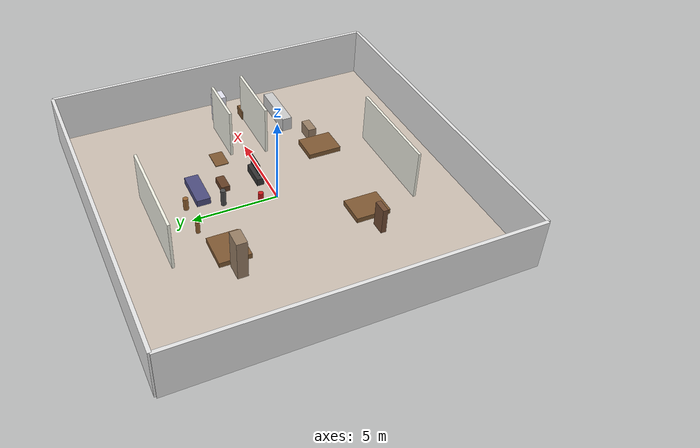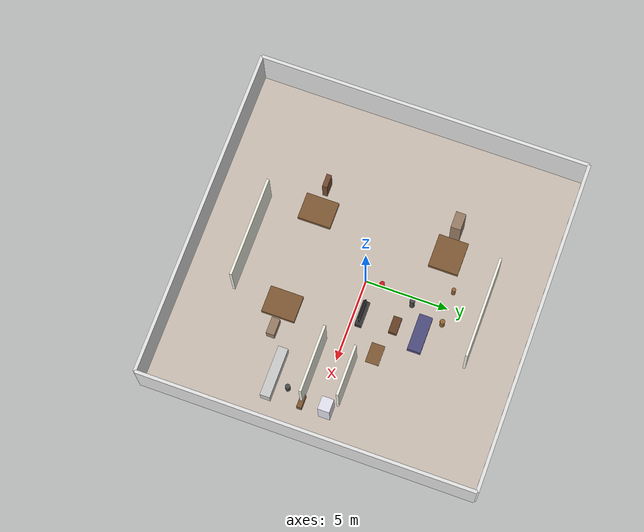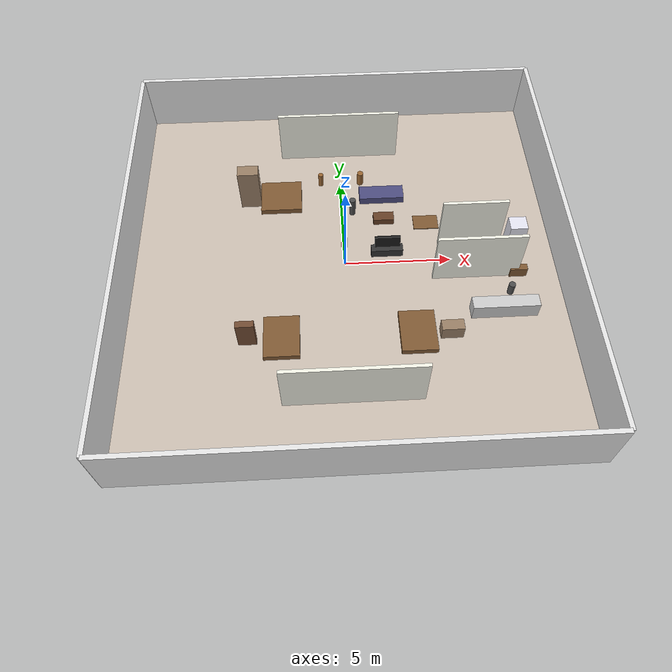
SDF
<?xml version="1.0" ?>
<sdf version="1.6">
  <world name="three_bedroom_apartment">
    <!-- Physics settings -->
    <physics type="ode">
      <max_step_size>0.001</max_step_size>
      <real_time_factor>1.0</real_time_factor>
      <real_time_update_rate>1000</real_time_update_rate>
    </physics>

    <!-- Scene -->
    <scene>
      <ambient>0.5 0.5 0.5 1</ambient>
      <background>0.8 0.9 1.0 1</background>
      <shadows>true</shadows>
    </scene>

    <!-- Lighting -->
    <light type="directional" name="sun">
      <cast_shadows>true</cast_shadows>
      <pose>0 0 10 0 0 0</pose>
      <diffuse>0.8 0.8 0.8 1</diffuse>
      <specular>0.2 0.2 0.2 1</specular>
      <direction>-0.5 1 -0.5</direction>
    </light>

    <light type="point" name="living_room_light">
      <pose>3 3 2.8 0 0 0</pose>
      <diffuse>1 1 0.9 1</diffuse>
      <attenuation>
        <range>10</range>
        <constant>0.5</constant>
        <linear>0.1</linear>
      </attenuation>
    </light>

    <light type="point" name="bedroom_light">
      <pose>-3 0 2.8 0 0 0</pose>
      <diffuse>1 1 0.9 1</diffuse>
      <attenuation>
        <range>10</range>
        <constant>0.5</constant>
        <linear>0.1</linear>
      </attenuation>
    </light>

    <!-- Ground/Floor -->
    <model name="floor">
      <static>true</static>
      <link name="floor_link">
        <pose>0 0 0 0 0 0</pose>
        <collision name="floor_collision">
          <geometry>
            <box>
              <size>20 20 0.1</size>
            </box>
          </geometry>
        </collision>
        <visual name="floor_visual">
          <geometry>
            <box>
              <size>20 20 0.1</size>
            </box>
          </geometry>
          <material>
            <ambient>0.8 0.75 0.7 1</ambient>
            <diffuse>0.8 0.75 0.7 1</diffuse>
          </material>
        </visual>
      </link>
    </model>

    <!-- ==================== WALLS ==================== -->
    <!-- North wall -->
    <model name="wall_north">
      <static>true</static>
      <link name="wall_link">
        <pose>0 10 1.5 0 0 0</pose>
        <collision name="wall_collision">
          <geometry>
            <box>
              <size>20 0.2 3</size>
            </box>
          </geometry>
        </collision>
        <visual name="wall_visual">
          <geometry>
            <box>
              <size>20 0.2 3</size>
            </box>
          </geometry>
          <material>
            <ambient>0.9 0.9 0.9 1</ambient>
            <diffuse>0.9 0.9 0.9 1</diffuse>
          </material>
        </visual>
      </link>
    </model>

    <!-- South wall -->
    <model name="wall_south">
      <static>true</static>
      <link name="wall_link">
        <pose>0 -10 1.5 0 0 0</pose>
        <collision name="wall_collision">
          <geometry>
            <box>
              <size>20 0.2 3</size>
            </box>
          </geometry>
        </collision>
        <visual name="wall_visual">
          <geometry>
            <box>
              <size>20 0.2 3</size>
            </box>
          </geometry>
          <material>
            <ambient>0.9 0.9 0.9 1</ambient>
            <diffuse>0.9 0.9 0.9 1</diffuse>
          </material>
        </visual>
      </link>
    </model>

    <!-- West wall -->
    <model name="wall_west">
      <static>true</static>
      <link name="wall_link">
        <pose>-10 0 1.5 0 0 0</pose>
        <collision name="wall_collision">
          <geometry>
            <box>
              <size>0.2 20 3</size>
            </box>
          </geometry>
        </collision>
        <visual name="wall_visual">
          <geometry>
            <box>
              <size>0.2 20 3</size>
            </box>
          </geometry>
          <material>
            <ambient>0.9 0.9 0.9 1</ambient>
            <diffuse>0.9 0.9 0.9 1</diffuse>
          </material>
        </visual>
      </link>
    </model>

    <!-- East wall -->
    <model name="wall_east">
      <static>true</static>
      <link name="wall_link">
        <pose>10 0 1.5 0 0 0</pose>
        <collision name="wall_collision">
          <geometry>
            <box>
              <size>0.2 20 3</size>
            </box>
          </geometry>
        </collision>
        <visual name="wall_visual">
          <geometry>
            <box>
              <size>0.2 20 3</size>
            </box>
          </geometry>
          <material>
            <ambient>0.9 0.9 0.9 1</ambient>
            <diffuse>0.9 0.9 0.9 1</diffuse>
          </material>
        </visual>
      </link>
    </model>

    <!-- Interior wall - vertical -->
    <model name="wall_vertical">
      <static>true</static>
      <link name="wall_link">
        <pose>0 -7 1.5 0 0 0</pose>
        <collision name="wall_collision">
          <geometry>
            <box>
              <size>6 0.15 3</size>
            </box>
          </geometry>
        </collision>
        <visual name="wall_visual">
          <geometry>
            <box>
              <size>6 0.15 3</size>
            </box>
          </geometry>
          <material>
            <ambient>0.95 0.95 0.9 1</ambient>
            <diffuse>0.95 0.95 0.9 1</diffuse>
          </material>
        </visual>
      </link>
    </model>

    <!-- Interior wall - vertical 2 -->
    <model name="wall_vertical2">
      <static>true</static>
      <link name="wall_link">
        <pose>0 7 1.5 0 0 0</pose>
        <collision name="wall_collision">
          <geometry>
            <box>
              <size>6 0.15 3</size>
            </box>
          </geometry>
        </collision>
        <visual name="wall_visual">
          <geometry>
            <box>
              <size>6 0.15 3</size>
            </box>
          </geometry>
          <material>
            <ambient>0.95 0.95 0.9 1</ambient>
            <diffuse>0.95 0.95 0.9 1</diffuse>
          </material>
        </visual>
      </link>
    </model>

    <!-- Kitchen wall -->
    <model name="kitchen_wall">
      <static>true</static>
      <link name="wall_link">
        <pose>6 -1 1.5 0 0 0</pose>
        <collision name="wall_collision">
          <geometry>
            <box>
              <size>4 0.15 3</size>
            </box>
          </geometry>
        </collision>
        <visual name="wall_visual">
          <geometry>
            <box>
              <size>4 0.15 3</size>
            </box>
          </geometry>
          <material>
            <ambient>0.95 0.95 0.9 1</ambient>
            <diffuse>0.95 0.95 0.9 1</diffuse>
          </material>
        </visual>
      </link>
    </model>

    <!-- Bathroom wall -->
    <model name="bathroom_wall">
      <static>true</static>
      <link name="wall_link">
        <pose>6 1 1.5 0 0 0</pose>
        <collision name="wall_collision">
          <geometry>
            <box>
              <size>3 0.15 3</size>
            </box>
          </geometry>
        </collision>
        <visual name="wall_visual">
          <geometry>
            <box>
              <size>3 0.15 3</size>
            </box>
          </geometry>
          <material>
            <ambient>0.95 0.95 0.9 1</ambient>
            <diffuse>0.95 0.95 0.9 1</diffuse>
          </material>
        </visual>
      </link>
    </model>

    <!-- ==================== FURNITURE ==================== -->
    <!-- Sofa -->
    <model name="sofa">
      <static>true</static>
      <pose>2 4 0.25 0 0 0</pose>
      <link name="base">
        <collision name="sofa_collision">
          <geometry>
            <box>
              <size>2.2 0.8 0.4</size>
            </box>
          </geometry>
        </collision>
        <visual name="sofa_visual">
          <geometry>
            <box>
              <size>2.2 0.8 0.4</size>
            </box>
          </geometry>
          <material>
            <ambient>0.3 0.3 0.5 1</ambient>
            <diffuse>0.3 0.3 0.5 1</diffuse>
          </material>
        </visual>
      </link>
    </model>

    <!-- Coffee Table -->
    <model name="coffee_table">
      <static>true</static>
      <pose>2 2.5 0.2 0 0 0</pose>
      <link name="link">
        <collision name="table_collision">
          <geometry>
            <box>
              <size>1.0 0.5 0.4</size>
            </box>
          </geometry>
        </collision>
        <visual name="table_visual">
          <geometry>
            <box>
              <size>1.0 0.5 0.4</size>
            </box>
          </geometry>
          <material>
            <ambient>0.4 0.25 0.15 1</ambient>
            <diffuse>0.4 0.25 0.15 1</diffuse>
          </material>
        </visual>
      </link>
    </model>

    <!-- TV Stand -->
    <model name="tv_stand">
      <static>true</static>
      <pose>2 0.5 0.25 0 0 0</pose>
      <link name="link">
        <collision name="stand_collision">
          <geometry>
            <box>
              <size>1.5 0.4 0.5</size>
            </box>
          </geometry>
        </collision>
        <visual name="stand_visual">
          <geometry>
            <box>
              <size>1.5 0.4 0.5</size>
            </box>
          </geometry>
          <material>
            <ambient>0.2 0.2 0.2 1</ambient>
            <diffuse>0.2 0.2 0.2 1</diffuse>
          </material>
        </visual>
      </link>
    </model>

    <!-- TV -->
    <model name="tv">
      <static>true</static>
      <pose>2 0.5 1.0 0 0 0</pose>
      <link name="link">
        <collision name="tv_collision">
          <geometry>
            <box>
              <size>1.2 0.1 0.7</size>
            </box>
          </geometry>
        </collision>
        <visual name="tv_visual">
          <geometry>
            <box>
              <size>1.2 0.1 0.7</size>
            </box>
          </geometry>
          <material>
            <ambient>0.1 0.1 0.1 1</ambient>
            <diffuse>0.1 0.1 0.1 1</diffuse>
          </material>
        </visual>
      </link>
    </model>

    <!-- Dining Table -->
    <model name="dining_table">
      <static>true</static>
      <pose>4 2 0.4 0 0 0</pose>
      <link name="link">
        <collision name="table_collision">
          <geometry>
            <box>
              <size>1.2 0.8 0.05</size>
            </box>
          </geometry>
        </collision>
        <visual name="table_visual">
          <geometry>
            <box>
              <size>1.2 0.8 0.05</size>
            </box>
          </geometry>
          <material>
            <ambient>0.5 0.35 0.2 1</ambient>
            <diffuse>0.5 0.35 0.2 1</diffuse>
          </material>
        </visual>
      </link>
    </model>

    <!-- Kitchen Counter -->
    <model name="kitchen_counter">
      <static>true</static>
      <pose>7 -3 0.45 0 0 0</pose>
      <link name="link">
        <collision name="counter_collision">
          <geometry>
            <box>
              <size>3 0.6 0.9</size>
            </box>
          </geometry>
        </collision>
        <visual name="counter_visual">
          <geometry>
            <box>
              <size>3 0.6 0.9</size>
            </box>
          </geometry>
          <material>
            <ambient>0.8 0.8 0.8 1</ambient>
            <diffuse>0.8 0.8 0.8 1</diffuse>
          </material>
        </visual>
      </link>
    </model>

    <!-- Refrigerator -->
    <model name="refrigerator">
      <static>true</static>
      <pose>8 0.5 1.0 0 0 0</pose>
      <link name="link">
        <collision name="fridge_collision">
          <geometry>
            <box>
              <size>0.8 0.7 2.0</size>
            </box>
          </geometry>
        </collision>
        <visual name="fridge_visual">
          <geometry>
            <box>
              <size>0.8 0.7 2.0</size>
            </box>
          </geometry>
          <material>
            <ambient>0.9 0.9 0.95 1</ambient>
            <diffuse>0.9 0.9 0.95 1</diffuse>
          </material>
        </visual>
      </link>
    </model>

    <!-- Bed 1 (Master Bedroom) -->
    <model name="bed1">
      <static>true</static>
      <pose>-3 4 0.3 0 0 0</pose>
      <link name="frame">
        <collision name="bed_collision">
          <geometry>
            <box>
              <size>2.0 1.8 0.3</size>
            </box>
          </geometry>
        </collision>
        <visual name="bed_visual">
          <geometry>
            <box>
              <size>2.0 1.8 0.3</size>
            </box>
          </geometry>
          <material>
            <ambient>0.5 0.35 0.2 1</ambient>
            <diffuse>0.5 0.35 0.2 1</diffuse>
          </material>
        </visual>
      </link>
    </model>

    <!-- Bed 2 -->
    <model name="bed2">
      <static>true</static>
      <pose>3 -4 0.3 0 0 0</pose>
      <link name="frame">
        <collision name="bed_collision">
          <geometry>
            <box>
              <size>1.6 2.0 0.3</size>
            </box>
          </geometry>
        </collision>
        <visual name="bed_visual">
          <geometry>
            <box>
              <size>1.6 2.0 0.3</size>
            </box>
          </geometry>
          <material>
            <ambient>0.5 0.35 0.2 1</ambient>
            <diffuse>0.5 0.35 0.2 1</diffuse>
          </material>
        </visual>
      </link>
    </model>

    <!-- Bed 3 -->
    <model name="bed3">
      <static>true</static>
      <pose>-3 -4 0.3 0 0 0</pose>
      <link name="frame">
        <collision name="bed_collision">
          <geometry>
            <box>
              <size>1.6 2.0 0.3</size>
            </box>
          </geometry>
        </collision>
        <visual name="bed_visual">
          <geometry>
            <box>
              <size>1.6 2.0 0.3</size>
            </box>
          </geometry>
          <material>
            <ambient>0.5 0.35 0.2 1</ambient>
            <diffuse>0.5 0.35 0.2 1</diffuse>
          </material>
        </visual>
      </link>
    </model>

    <!-- Wardrobe -->
    <model name="wardrobe">
      <static>true</static>
      <pose>-4.5 4 1.2 0 0 0</pose>
      <link name="link">
        <collision name="wardrobe_collision">
          <geometry>
            <box>
              <size>1.0 0.6 2.4</size>
            </box>
          </geometry>
        </collision>
        <visual name="wardrobe_visual">
          <geometry>
            <box>
              <size>1.0 0.6 2.4</size>
            </box>
          </geometry>
          <material>
            <ambient>0.6 0.5 0.4 1</ambient>
            <diffuse>0.6 0.5 0.4 1</diffuse>
          </material>
        </visual>
      </link>
    </model>

    <!-- Desk -->
    <model name="desk">
      <static>true</static>
      <pose>4.5 -4 0.4 0 0 0</pose>
      <link name="link">
        <collision name="desk_collision">
          <geometry>
            <box>
              <size>1.0 0.5 0.8</size>
            </box>
          </geometry>
        </collision>
        <visual name="desk_visual">
          <geometry>
            <box>
              <size>1.0 0.5 0.8</size>
            </box>
          </geometry>
          <material>
            <ambient>0.6 0.5 0.4 1</ambient>
            <diffuse>0.6 0.5 0.4 1</diffuse>
          </material>
        </visual>
      </link>
    </model>

    <!-- Bookshelf -->
    <model name="bookshelf">
      <static>true</static>
      <pose>-4.5 -4 0.8 0 0 0</pose>
      <link name="link">
        <collision name="shelf_collision">
          <geometry>
            <box>
              <size>0.8 0.3 1.6</size>
            </box>
          </geometry>
        </collision>
        <visual name="shelf_visual">
          <geometry>
            <box>
              <size>0.8 0.3 1.6</size>
            </box>
          </geometry>
          <material>
            <ambient>0.45 0.3 0.2 1</ambient>
            <diffuse>0.45 0.3 0.2 1</diffuse>
          </material>
        </visual>
      </link>
    </model>

    <!-- ==================== CLUTTER ==================== -->
    <!-- Plant 1 -->
    <model name="plant1">
      <static>true</static>
      <pose>1 5 0.3 0 0 0</pose>
      <link name="pot">
        <collision name="pot_collision">
          <geometry>
            <cylinder>
              <radius>0.15</radius>
              <height>0.2</height>
            </cylinder>
          </geometry>
        </collision>
        <visual name="pot_visual">
          <geometry>
            <cylinder>
              <radius>0.15</radius>
              <height>0.2</height>
            </cylinder>
          </geometry>
          <material>
            <ambient>0.6 0.4 0.2 1</ambient>
            <diffuse>0.6 0.4 0.2 1</diffuse>
          </material>
        </visual>
      </link>
    </model>

    <!-- Plant 2 -->
    <model name="plant2">
      <static>true</static>
      <pose>-1 5 0.3 0 0 0</pose>
      <link name="pot">
        <collision name="pot_collision">
          <geometry>
            <cylinder>
              <radius>0.12</radius>
              <height>0.15</height>
            </cylinder>
          </geometry>
        </collision>
        <visual name="pot_visual">
          <geometry>
            <cylinder>
              <radius>0.12</radius>
              <height>0.15</height>
            </cylinder>
          </geometry>
          <material>
            <ambient>0.6 0.4 0.2 1</ambient>
            <diffuse>0.6 0.4 0.2 1</diffuse>
          </material>
        </visual>
      </link>
    </model>

    <!-- Lamp -->
    <model name="lamp">
      <static>true</static>
      <pose>0.5 3 0.6 0 0 0</pose>
      <link name="base">
        <collision name="base_collision">
          <geometry>
            <cylinder>
              <radius>0.15</radius>
              <height>0.05</height>
            </cylinder>
          </geometry>
        </collision>
        <visual name="base_visual">
          <geometry>
            <cylinder>
              <radius>0.15</radius>
              <height>0.05</height>
            </cylinder>
          </geometry>
          <material>
            <ambient>0.3 0.3 0.3 1</ambient>
            <diffuse>0.3 0.3 0.3 1</diffuse>
          </material>
        </visual>
      </link>
    </model>

    <!-- Shoe Rack -->
    <model name="shoe_rack">
      <static>true</static>
      <pose>8 -1 0.3 0 0 0</pose>
      <link name="link">
        <collision name="rack_collision">
          <geometry>
            <box>
              <size>0.8 0.3 0.6</size>
            </box>
          </geometry>
        </collision>
        <visual name="rack_visual">
          <geometry>
            <box>
              <size>0.8 0.3 0.6</size>
            </box>
          </geometry>
          <material>
            <ambient>0.5 0.35 0.2 1</ambient>
            <diffuse>0.5 0.35 0.2 1</diffuse>
          </material>
        </visual>
      </link>
    </model>

    <!-- Trash Can -->
    <model name="trash_can">
      <static>true</static>
      <pose>7.5 -2 0.2 0 0 0</pose>
      <link name="link">
        <collision name="trash_collision">
          <geometry>
            <cylinder>
              <radius>0.15</radius>
              <height>0.4</height>
            </cylinder>
          </geometry>
        </collision>
        <visual name="trash_visual">
          <geometry>
            <cylinder>
              <radius>0.15</radius>
              <height>0.4</height>
            </cylinder>
          </geometry>
          <material>
            <ambient>0.3 0.3 0.3 1</ambient>
            <diffuse>0.3 0.3 0.3 1</diffuse>
          </material>
        </visual>
      </link>
    </model>

    <!-- Vacuum Cleaner -->
    <model name="vacuum_cleaner">
      <static>true</static>
      <pose>0 1 0.15 0 0 0</pose>
      <link name="link">
        <collision name="vacuum_collision">
          <geometry>
            <cylinder>
              <radius>0.15</radius>
              <height>0.3</height>
            </cylinder>
          </geometry>
        </collision>
        <visual name="vacuum_visual">
          <geometry>
            <cylinder>
              <radius>0.15</radius>
              <height>0.3</height>
            </cylinder>
          </geometry>
          <material>
            <ambient>0.8 0.1 0.1 1</ambient>
            <diffuse>0.8 0.1 0.1 1</diffuse>
          </material>
        </visual>
      </link>
    </model>

  </world>
</sdf>
